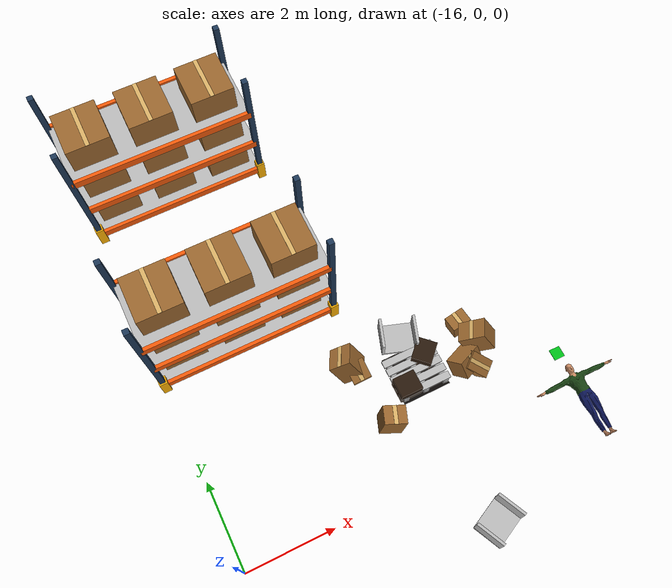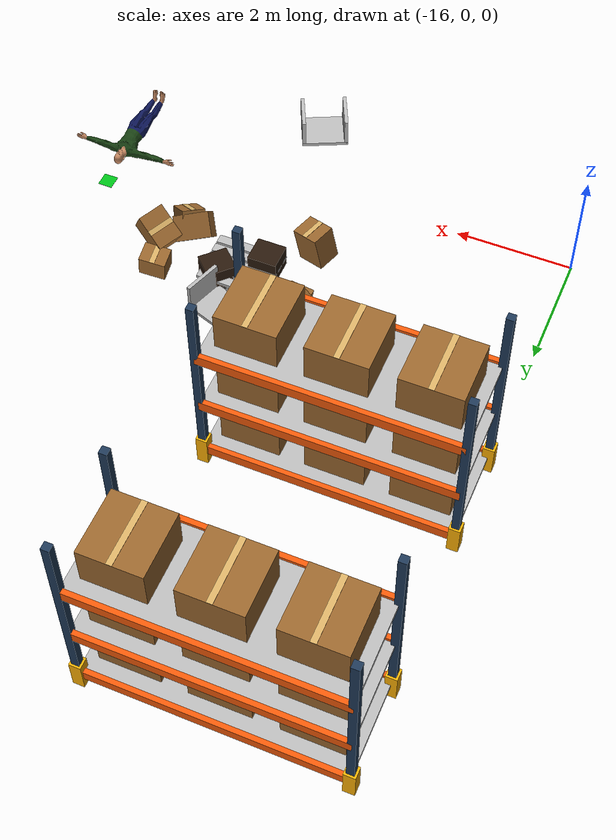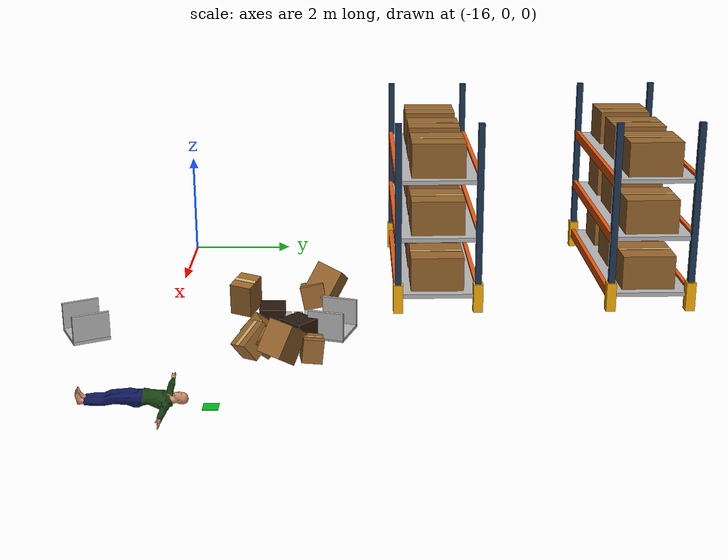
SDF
<sdf version="1.9">
 <world name="factory">
  <model name="rack_-1_1_2">
   <static>true</static>
   <pose>-14 5 0 0 0 0</pose>
   <link name="body">
    <visual name="post0_visual">
     <pose>-2 -0.75 1.8 0 0 0</pose>
     <geometry><box><size>0.12 0.12 3.6</size></box></geometry>
     <material><ambient>.12 .22 .34 1</ambient><diffuse>.12 .22 .34 1</diffuse></material>
    </visual>
    <collision name="post0_collision">
     <pose>-2 -0.75 1.8 0 0 0</pose>
     <geometry><box><size>0.12 0.12 3.6</size></box></geometry>
    </collision>
    <visual name="guard0_visual">
     <pose>-2 -0.75 0.275 0 0 0</pose>
     <geometry><box><size>0.18 0.18 0.55</size></box></geometry>
     <material><ambient>1 .7 .02 1</ambient><diffuse>1 .7 .02 1</diffuse></material>
    </visual>
    <collision name="guard0_collision">
     <pose>-2 -0.75 0.275 0 0 0</pose>
     <geometry><box><size>0.18 0.18 0.55</size></box></geometry>
    </collision>
    <visual name="post1_visual">
     <pose>2 -0.75 1.8 0 0 0</pose>
     <geometry><box><size>0.12 0.12 3.6</size></box></geometry>
     <material><ambient>.12 .22 .34 1</ambient><diffuse>.12 .22 .34 1</diffuse></material>
    </visual>
    <collision name="post1_collision">
     <pose>2 -0.75 1.8 0 0 0</pose>
     <geometry><box><size>0.12 0.12 3.6</size></box></geometry>
    </collision>
    <visual name="guard1_visual">
     <pose>2 -0.75 0.275 0 0 0</pose>
     <geometry><box><size>0.18 0.18 0.55</size></box></geometry>
     <material><ambient>1 .7 .02 1</ambient><diffuse>1 .7 .02 1</diffuse></material>
    </visual>
    <collision name="guard1_collision">
     <pose>2 -0.75 0.275 0 0 0</pose>
     <geometry><box><size>0.18 0.18 0.55</size></box></geometry>
    </collision>
    <visual name="post2_visual">
     <pose>-2 0.75 1.8 0 0 0</pose>
     <geometry><box><size>0.12 0.12 3.6</size></box></geometry>
     <material><ambient>.12 .22 .34 1</ambient><diffuse>.12 .22 .34 1</diffuse></material>
    </visual>
    <collision name="post2_collision">
     <pose>-2 0.75 1.8 0 0 0</pose>
     <geometry><box><size>0.12 0.12 3.6</size></box></geometry>
    </collision>
    <visual name="guard2_visual">
     <pose>-2 0.75 0.275 0 0 0</pose>
     <geometry><box><size>0.18 0.18 0.55</size></box></geometry>
     <material><ambient>1 .7 .02 1</ambient><diffuse>1 .7 .02 1</diffuse></material>
    </visual>
    <collision name="guard2_collision">
     <pose>-2 0.75 0.275 0 0 0</pose>
     <geometry><box><size>0.18 0.18 0.55</size></box></geometry>
    </collision>
    <visual name="post3_visual">
     <pose>2 0.75 1.8 0 0 0</pose>
     <geometry><box><size>0.12 0.12 3.6</size></box></geometry>
     <material><ambient>.12 .22 .34 1</ambient><diffuse>.12 .22 .34 1</diffuse></material>
    </visual>
    <collision name="post3_collision">
     <pose>2 0.75 1.8 0 0 0</pose>
     <geometry><box><size>0.12 0.12 3.6</size></box></geometry>
    </collision>
    <visual name="guard3_visual">
     <pose>2 0.75 0.275 0 0 0</pose>
     <geometry><box><size>0.18 0.18 0.55</size></box></geometry>
     <material><ambient>1 .7 .02 1</ambient><diffuse>1 .7 .02 1</diffuse></material>
    </visual>
    <collision name="guard3_collision">
     <pose>2 0.75 0.275 0 0 0</pose>
     <geometry><box><size>0.18 0.18 0.55</size></box></geometry>
    </collision>
    <visual name="shelf0_visual">
     <pose>0 0 0.3 0 0 0</pose>
     <geometry><mesh><uri>model://factory_scene_assets/meshes/wood_010.dae</uri></mesh></geometry>
    </visual>
    <collision name="shelf0_collision">
     <pose>0 0 0.3 0 0 0</pose>
     <geometry><box><size>4 1.5 0.08</size></box></geometry>
    </collision>
    <visual name="beam0_0_visual">
     <pose>0 -0.77 0.3 0 0 0</pose>
     <geometry><box><size>4 0.08 0.18</size></box></geometry>
     <material><ambient>.95 .35 .035 1</ambient><diffuse>.95 .35 .035 1</diffuse></material>
    </visual>
    <collision name="beam0_0_collision">
     <pose>0 -0.77 0.3 0 0 0</pose>
     <geometry><box><size>4 0.08 0.18</size></box></geometry>
    </collision>
    <visual name="beam0_1_visual">
     <pose>0 0.77 0.3 0 0 0</pose>
     <geometry><box><size>4 0.08 0.18</size></box></geometry>
     <material><ambient>.95 .35 .035 1</ambient><diffuse>.95 .35 .035 1</diffuse></material>
    </visual>
    <collision name="beam0_1_collision">
     <pose>0 0.77 0.3 0 0 0</pose>
     <geometry><box><size>4 0.08 0.18</size></box></geometry>
    </collision>
    <visual name="cargo0_0_visual">
     <pose>-1.35 0 0.665 0 0 0</pose>
     <geometry><box><size>0.95 1 0.65</size></box></geometry>
     <material><ambient>.60 .40 .18 1</ambient><diffuse>.60 .40 .18 1</diffuse></material>
    </visual>
    <collision name="cargo0_0_collision">
     <pose>-1.35 0 0.665 0 0 0</pose>
     <geometry><box><size>0.95 1 0.65</size></box></geometry>
    </collision>
    <visual name="cargo0_0_tape_visual">
     <pose>-1.35 0 0.993 0 0 0</pose>
     <geometry><box><size>0.09 1 0.006</size></box></geometry>
     <material><ambient>.85 .69 .4 1</ambient><diffuse>.85 .69 .4 1</diffuse></material>
    </visual>
    <visual name="cargo0_1_visual">
     <pose>0 0 0.665 0 0 0</pose>
     <geometry><box><size>0.95 1 0.65</size></box></geometry>
     <material><ambient>.60 .40 .18 1</ambient><diffuse>.60 .40 .18 1</diffuse></material>
    </visual>
    <collision name="cargo0_1_collision">
     <pose>0 0 0.665 0 0 0</pose>
     <geometry><box><size>0.95 1 0.65</size></box></geometry>
    </collision>
    <visual name="cargo0_1_tape_visual">
     <pose>0 0 0.993 0 0 0</pose>
     <geometry><box><size>0.09 1 0.006</size></box></geometry>
     <material><ambient>.85 .69 .4 1</ambient><diffuse>.85 .69 .4 1</diffuse></material>
    </visual>
    <visual name="cargo0_2_visual">
     <pose>1.35 0 0.665 0 0 0</pose>
     <geometry><box><size>0.95 1 0.65</size></box></geometry>
     <material><ambient>.60 .40 .18 1</ambient><diffuse>.60 .40 .18 1</diffuse></material>
    </visual>
    <collision name="cargo0_2_collision">
     <pose>1.35 0 0.665 0 0 0</pose>
     <geometry><box><size>0.95 1 0.65</size></box></geometry>
    </collision>
    <visual name="cargo0_2_tape_visual">
     <pose>1.35 0 0.993 0 0 0</pose>
     <geometry><box><size>0.09 1 0.006</size></box></geometry>
     <material><ambient>.85 .69 .4 1</ambient><diffuse>.85 .69 .4 1</diffuse></material>
    </visual>
    <visual name="shelf1_visual">
     <pose>0 0 1.4 0 0 0</pose>
     <geometry><mesh><uri>model://factory_scene_assets/meshes/wood_010.dae</uri></mesh></geometry>
    </visual>
    <collision name="shelf1_collision">
     <pose>0 0 1.4 0 0 0</pose>
     <geometry><box><size>4 1.5 0.08</size></box></geometry>
    </collision>
    <visual name="beam1_0_visual">
     <pose>0 -0.77 1.4 0 0 0</pose>
     <geometry><box><size>4 0.08 0.18</size></box></geometry>
     <material><ambient>.95 .35 .035 1</ambient><diffuse>.95 .35 .035 1</diffuse></material>
    </visual>
    <collision name="beam1_0_collision">
     <pose>0 -0.77 1.4 0 0 0</pose>
     <geometry><box><size>4 0.08 0.18</size></box></geometry>
    </collision>
    <visual name="beam1_1_visual">
     <pose>0 0.77 1.4 0 0 0</pose>
     <geometry><box><size>4 0.08 0.18</size></box></geometry>
     <material><ambient>.95 .35 .035 1</ambient><diffuse>.95 .35 .035 1</diffuse></material>
    </visual>
    <collision name="beam1_1_collision">
     <pose>0 0.77 1.4 0 0 0</pose>
     <geometry><box><size>4 0.08 0.18</size></box></geometry>
    </collision>
    <visual name="cargo1_0_visual">
     <pose>-1.35 0 1.765 0 0 0</pose>
     <geometry><box><size>0.95 1 0.65</size></box></geometry>
     <material><ambient>.60 .40 .18 1</ambient><diffuse>.60 .40 .18 1</diffuse></material>
    </visual>
    <collision name="cargo1_0_collision">
     <pose>-1.35 0 1.765 0 0 0</pose>
     <geometry><box><size>0.95 1 0.65</size></box></geometry>
    </collision>
    <visual name="cargo1_0_tape_visual">
     <pose>-1.35 0 2.093 0 0 0</pose>
     <geometry><box><size>0.09 1 0.006</size></box></geometry>
     <material><ambient>.85 .69 .4 1</ambient><diffuse>.85 .69 .4 1</diffuse></material>
    </visual>
    <visual name="cargo1_1_visual">
     <pose>0 0 1.765 0 0 0</pose>
     <geometry><box><size>0.95 1 0.65</size></box></geometry>
     <material><ambient>.60 .40 .18 1</ambient><diffuse>.60 .40 .18 1</diffuse></material>
    </visual>
    <collision name="cargo1_1_collision">
     <pose>0 0 1.765 0 0 0</pose>
     <geometry><box><size>0.95 1 0.65</size></box></geometry>
    </collision>
    <visual name="cargo1_1_tape_visual">
     <pose>0 0 2.093 0 0 0</pose>
     <geometry><box><size>0.09 1 0.006</size></box></geometry>
     <material><ambient>.85 .69 .4 1</ambient><diffuse>.85 .69 .4 1</diffuse></material>
    </visual>
    <visual name="cargo1_2_visual">
     <pose>1.35 0 1.765 0 0 0</pose>
     <geometry><box><size>0.95 1 0.65</size></box></geometry>
     <material><ambient>.60 .40 .18 1</ambient><diffuse>.60 .40 .18 1</diffuse></material>
    </visual>
    <collision name="cargo1_2_collision">
     <pose>1.35 0 1.765 0 0 0</pose>
     <geometry><box><size>0.95 1 0.65</size></box></geometry>
    </collision>
    <visual name="cargo1_2_tape_visual">
     <pose>1.35 0 2.093 0 0 0</pose>
     <geometry><box><size>0.09 1 0.006</size></box></geometry>
     <material><ambient>.85 .69 .4 1</ambient><diffuse>.85 .69 .4 1</diffuse></material>
    </visual>
    <visual name="shelf2_visual">
     <pose>0 0 2.5 0 0 0</pose>
     <geometry><mesh><uri>model://factory_scene_assets/meshes/wood_010.dae</uri></mesh></geometry>
    </visual>
    <collision name="shelf2_collision">
     <pose>0 0 2.5 0 0 0</pose>
     <geometry><box><size>4 1.5 0.08</size></box></geometry>
    </collision>
    <visual name="beam2_0_visual">
     <pose>0 -0.77 2.5 0 0 0</pose>
     <geometry><box><size>4 0.08 0.18</size></box></geometry>
     <material><ambient>.95 .35 .035 1</ambient><diffuse>.95 .35 .035 1</diffuse></material>
    </visual>
    <collision name="beam2_0_collision">
     <pose>0 -0.77 2.5 0 0 0</pose>
     <geometry><box><size>4 0.08 0.18</size></box></geometry>
    </collision>
    <visual name="beam2_1_visual">
     <pose>0 0.77 2.5 0 0 0</pose>
     <geometry><box><size>4 0.08 0.18</size></box></geometry>
     <material><ambient>.95 .35 .035 1</ambient><diffuse>.95 .35 .035 1</diffuse></material>
    </visual>
    <collision name="beam2_1_collision">
     <pose>0 0.77 2.5 0 0 0</pose>
     <geometry><box><size>4 0.08 0.18</size></box></geometry>
    </collision>
    <visual name="cargo2_0_visual">
     <pose>-1.35 0 2.865 0 0 0</pose>
     <geometry><box><size>0.95 1 0.65</size></box></geometry>
     <material><ambient>.60 .40 .18 1</ambient><diffuse>.60 .40 .18 1</diffuse></material>
    </visual>
    <collision name="cargo2_0_collision">
     <pose>-1.35 0 2.865 0 0 0</pose>
     <geometry><box><size>0.95 1 0.65</size></box></geometry>
    </collision>
    <visual name="cargo2_0_tape_visual">
     <pose>-1.35 0 3.193 0 0 0</pose>
     <geometry><box><size>0.09 1 0.006</size></box></geometry>
     <material><ambient>.85 .69 .4 1</ambient><diffuse>.85 .69 .4 1</diffuse></material>
    </visual>
    <visual name="cargo2_1_visual">
     <pose>0 0 2.865 0 0 0</pose>
     <geometry><box><size>0.95 1 0.65</size></box></geometry>
     <material><ambient>.60 .40 .18 1</ambient><diffuse>.60 .40 .18 1</diffuse></material>
    </visual>
    <collision name="cargo2_1_collision">
     <pose>0 0 2.865 0 0 0</pose>
     <geometry><box><size>0.95 1 0.65</size></box></geometry>
    </collision>
    <visual name="cargo2_1_tape_visual">
     <pose>0 0 3.193 0 0 0</pose>
     <geometry><box><size>0.09 1 0.006</size></box></geometry>
     <material><ambient>.85 .69 .4 1</ambient><diffuse>.85 .69 .4 1</diffuse></material>
    </visual>
    <visual name="cargo2_2_visual">
     <pose>1.35 0 2.865 0 0 0</pose>
     <geometry><box><size>0.95 1 0.65</size></box></geometry>
     <material><ambient>.60 .40 .18 1</ambient><diffuse>.60 .40 .18 1</diffuse></material>
    </visual>
    <collision name="cargo2_2_collision">
     <pose>1.35 0 2.865 0 0 0</pose>
     <geometry><box><size>0.95 1 0.65</size></box></geometry>
    </collision>
    <visual name="cargo2_2_tape_visual">
     <pose>1.35 0 3.193 0 0 0</pose>
     <geometry><box><size>0.09 1 0.006</size></box></geometry>
     <material><ambient>.85 .69 .4 1</ambient><diffuse>.85 .69 .4 1</diffuse></material>
    </visual>
   </link>
  </model>
  <model name="rack_-1_1_3">
   <static>true</static>
   <pose>-14 9 0 0 0 0</pose>
   <link name="body">
    <visual name="post0_visual">
     <pose>-2 -0.75 1.8 0 0 0</pose>
     <geometry><box><size>0.12 0.12 3.6</size></box></geometry>
     <material><ambient>.12 .22 .34 1</ambient><diffuse>.12 .22 .34 1</diffuse></material>
    </visual>
    <collision name="post0_collision">
     <pose>-2 -0.75 1.8 0 0 0</pose>
     <geometry><box><size>0.12 0.12 3.6</size></box></geometry>
    </collision>
    <visual name="guard0_visual">
     <pose>-2 -0.75 0.275 0 0 0</pose>
     <geometry><box><size>0.18 0.18 0.55</size></box></geometry>
     <material><ambient>1 .7 .02 1</ambient><diffuse>1 .7 .02 1</diffuse></material>
    </visual>
    <collision name="guard0_collision">
     <pose>-2 -0.75 0.275 0 0 0</pose>
     <geometry><box><size>0.18 0.18 0.55</size></box></geometry>
    </collision>
    <visual name="post1_visual">
     <pose>2 -0.75 1.8 0 0 0</pose>
     <geometry><box><size>0.12 0.12 3.6</size></box></geometry>
     <material><ambient>.12 .22 .34 1</ambient><diffuse>.12 .22 .34 1</diffuse></material>
    </visual>
    <collision name="post1_collision">
     <pose>2 -0.75 1.8 0 0 0</pose>
     <geometry><box><size>0.12 0.12 3.6</size></box></geometry>
    </collision>
    <visual name="guard1_visual">
     <pose>2 -0.75 0.275 0 0 0</pose>
     <geometry><box><size>0.18 0.18 0.55</size></box></geometry>
     <material><ambient>1 .7 .02 1</ambient><diffuse>1 .7 .02 1</diffuse></material>
    </visual>
    <collision name="guard1_collision">
     <pose>2 -0.75 0.275 0 0 0</pose>
     <geometry><box><size>0.18 0.18 0.55</size></box></geometry>
    </collision>
    <visual name="post2_visual">
     <pose>-2 0.75 1.8 0 0 0</pose>
     <geometry><box><size>0.12 0.12 3.6</size></box></geometry>
     <material><ambient>.12 .22 .34 1</ambient><diffuse>.12 .22 .34 1</diffuse></material>
    </visual>
    <collision name="post2_collision">
     <pose>-2 0.75 1.8 0 0 0</pose>
     <geometry><box><size>0.12 0.12 3.6</size></box></geometry>
    </collision>
    <visual name="guard2_visual">
     <pose>-2 0.75 0.275 0 0 0</pose>
     <geometry><box><size>0.18 0.18 0.55</size></box></geometry>
     <material><ambient>1 .7 .02 1</ambient><diffuse>1 .7 .02 1</diffuse></material>
    </visual>
    <collision name="guard2_collision">
     <pose>-2 0.75 0.275 0 0 0</pose>
     <geometry><box><size>0.18 0.18 0.55</size></box></geometry>
    </collision>
    <visual name="post3_visual">
     <pose>2 0.75 1.8 0 0 0</pose>
     <geometry><box><size>0.12 0.12 3.6</size></box></geometry>
     <material><ambient>.12 .22 .34 1</ambient><diffuse>.12 .22 .34 1</diffuse></material>
    </visual>
    <collision name="post3_collision">
     <pose>2 0.75 1.8 0 0 0</pose>
     <geometry><box><size>0.12 0.12 3.6</size></box></geometry>
    </collision>
    <visual name="guard3_visual">
     <pose>2 0.75 0.275 0 0 0</pose>
     <geometry><box><size>0.18 0.18 0.55</size></box></geometry>
     <material><ambient>1 .7 .02 1</ambient><diffuse>1 .7 .02 1</diffuse></material>
    </visual>
    <collision name="guard3_collision">
     <pose>2 0.75 0.275 0 0 0</pose>
     <geometry><box><size>0.18 0.18 0.55</size></box></geometry>
    </collision>
    <visual name="shelf0_visual">
     <pose>0 0 0.3 0 0 0</pose>
     <geometry><mesh><uri>model://factory_scene_assets/meshes/wood_010.dae</uri></mesh></geometry>
    </visual>
    <collision name="shelf0_collision">
     <pose>0 0 0.3 0 0 0</pose>
     <geometry><box><size>4 1.5 0.08</size></box></geometry>
    </collision>
    <visual name="beam0_0_visual">
     <pose>0 -0.77 0.3 0 0 0</pose>
     <geometry><box><size>4 0.08 0.18</size></box></geometry>
     <material><ambient>.95 .35 .035 1</ambient><diffuse>.95 .35 .035 1</diffuse></material>
    </visual>
    <collision name="beam0_0_collision">
     <pose>0 -0.77 0.3 0 0 0</pose>
     <geometry><box><size>4 0.08 0.18</size></box></geometry>
    </collision>
    <visual name="beam0_1_visual">
     <pose>0 0.77 0.3 0 0 0</pose>
     <geometry><box><size>4 0.08 0.18</size></box></geometry>
     <material><ambient>.95 .35 .035 1</ambient><diffuse>.95 .35 .035 1</diffuse></material>
    </visual>
    <collision name="beam0_1_collision">
     <pose>0 0.77 0.3 0 0 0</pose>
     <geometry><box><size>4 0.08 0.18</size></box></geometry>
    </collision>
    <visual name="cargo0_0_visual">
     <pose>-1.35 0 0.665 0 0 0</pose>
     <geometry><box><size>0.95 1 0.65</size></box></geometry>
     <material><ambient>.60 .40 .18 1</ambient><diffuse>.60 .40 .18 1</diffuse></material>
    </visual>
    <collision name="cargo0_0_collision">
     <pose>-1.35 0 0.665 0 0 0</pose>
     <geometry><box><size>0.95 1 0.65</size></box></geometry>
    </collision>
    <visual name="cargo0_0_tape_visual">
     <pose>-1.35 0 0.993 0 0 0</pose>
     <geometry><box><size>0.09 1 0.006</size></box></geometry>
     <material><ambient>.85 .69 .4 1</ambient><diffuse>.85 .69 .4 1</diffuse></material>
    </visual>
    <visual name="cargo0_1_visual">
     <pose>0 0 0.665 0 0 0</pose>
     <geometry><box><size>0.95 1 0.65</size></box></geometry>
     <material><ambient>.60 .40 .18 1</ambient><diffuse>.60 .40 .18 1</diffuse></material>
    </visual>
    <collision name="cargo0_1_collision">
     <pose>0 0 0.665 0 0 0</pose>
     <geometry><box><size>0.95 1 0.65</size></box></geometry>
    </collision>
    <visual name="cargo0_1_tape_visual">
     <pose>0 0 0.993 0 0 0</pose>
     <geometry><box><size>0.09 1 0.006</size></box></geometry>
     <material><ambient>.85 .69 .4 1</ambient><diffuse>.85 .69 .4 1</diffuse></material>
    </visual>
    <visual name="cargo0_2_visual">
     <pose>1.35 0 0.665 0 0 0</pose>
     <geometry><box><size>0.95 1 0.65</size></box></geometry>
     <material><ambient>.60 .40 .18 1</ambient><diffuse>.60 .40 .18 1</diffuse></material>
    </visual>
    <collision name="cargo0_2_collision">
     <pose>1.35 0 0.665 0 0 0</pose>
     <geometry><box><size>0.95 1 0.65</size></box></geometry>
    </collision>
    <visual name="cargo0_2_tape_visual">
     <pose>1.35 0 0.993 0 0 0</pose>
     <geometry><box><size>0.09 1 0.006</size></box></geometry>
     <material><ambient>.85 .69 .4 1</ambient><diffuse>.85 .69 .4 1</diffuse></material>
    </visual>
    <visual name="shelf1_visual">
     <pose>0 0 1.4 0 0 0</pose>
     <geometry><mesh><uri>model://factory_scene_assets/meshes/wood_010.dae</uri></mesh></geometry>
    </visual>
    <collision name="shelf1_collision">
     <pose>0 0 1.4 0 0 0</pose>
     <geometry><box><size>4 1.5 0.08</size></box></geometry>
    </collision>
    <visual name="beam1_0_visual">
     <pose>0 -0.77 1.4 0 0 0</pose>
     <geometry><box><size>4 0.08 0.18</size></box></geometry>
     <material><ambient>.95 .35 .035 1</ambient><diffuse>.95 .35 .035 1</diffuse></material>
    </visual>
    <collision name="beam1_0_collision">
     <pose>0 -0.77 1.4 0 0 0</pose>
     <geometry><box><size>4 0.08 0.18</size></box></geometry>
    </collision>
    <visual name="beam1_1_visual">
     <pose>0 0.77 1.4 0 0 0</pose>
     <geometry><box><size>4 0.08 0.18</size></box></geometry>
     <material><ambient>.95 .35 .035 1</ambient><diffuse>.95 .35 .035 1</diffuse></material>
    </visual>
    <collision name="beam1_1_collision">
     <pose>0 0.77 1.4 0 0 0</pose>
     <geometry><box><size>4 0.08 0.18</size></box></geometry>
    </collision>
    <visual name="cargo1_0_visual">
     <pose>-1.35 0 1.765 0 0 0</pose>
     <geometry><box><size>0.95 1 0.65</size></box></geometry>
     <material><ambient>.60 .40 .18 1</ambient><diffuse>.60 .40 .18 1</diffuse></material>
    </visual>
    <collision name="cargo1_0_collision">
     <pose>-1.35 0 1.765 0 0 0</pose>
     <geometry><box><size>0.95 1 0.65</size></box></geometry>
    </collision>
    <visual name="cargo1_0_tape_visual">
     <pose>-1.35 0 2.093 0 0 0</pose>
     <geometry><box><size>0.09 1 0.006</size></box></geometry>
     <material><ambient>.85 .69 .4 1</ambient><diffuse>.85 .69 .4 1</diffuse></material>
    </visual>
    <visual name="cargo1_1_visual">
     <pose>0 0 1.765 0 0 0</pose>
     <geometry><box><size>0.95 1 0.65</size></box></geometry>
     <material><ambient>.60 .40 .18 1</ambient><diffuse>.60 .40 .18 1</diffuse></material>
    </visual>
    <collision name="cargo1_1_collision">
     <pose>0 0 1.765 0 0 0</pose>
     <geometry><box><size>0.95 1 0.65</size></box></geometry>
    </collision>
    <visual name="cargo1_1_tape_visual">
     <pose>0 0 2.093 0 0 0</pose>
     <geometry><box><size>0.09 1 0.006</size></box></geometry>
     <material><ambient>.85 .69 .4 1</ambient><diffuse>.85 .69 .4 1</diffuse></material>
    </visual>
    <visual name="cargo1_2_visual">
     <pose>1.35 0 1.765 0 0 0</pose>
     <geometry><box><size>0.95 1 0.65</size></box></geometry>
     <material><ambient>.60 .40 .18 1</ambient><diffuse>.60 .40 .18 1</diffuse></material>
    </visual>
    <collision name="cargo1_2_collision">
     <pose>1.35 0 1.765 0 0 0</pose>
     <geometry><box><size>0.95 1 0.65</size></box></geometry>
    </collision>
    <visual name="cargo1_2_tape_visual">
     <pose>1.35 0 2.093 0 0 0</pose>
     <geometry><box><size>0.09 1 0.006</size></box></geometry>
     <material><ambient>.85 .69 .4 1</ambient><diffuse>.85 .69 .4 1</diffuse></material>
    </visual>
    <visual name="shelf2_visual">
     <pose>0 0 2.5 0 0 0</pose>
     <geometry><mesh><uri>model://factory_scene_assets/meshes/wood_010.dae</uri></mesh></geometry>
    </visual>
    <collision name="shelf2_collision">
     <pose>0 0 2.5 0 0 0</pose>
     <geometry><box><size>4 1.5 0.08</size></box></geometry>
    </collision>
    <visual name="beam2_0_visual">
     <pose>0 -0.77 2.5 0 0 0</pose>
     <geometry><box><size>4 0.08 0.18</size></box></geometry>
     <material><ambient>.95 .35 .035 1</ambient><diffuse>.95 .35 .035 1</diffuse></material>
    </visual>
    <collision name="beam2_0_collision">
     <pose>0 -0.77 2.5 0 0 0</pose>
     <geometry><box><size>4 0.08 0.18</size></box></geometry>
    </collision>
    <visual name="beam2_1_visual">
     <pose>0 0.77 2.5 0 0 0</pose>
     <geometry><box><size>4 0.08 0.18</size></box></geometry>
     <material><ambient>.95 .35 .035 1</ambient><diffuse>.95 .35 .035 1</diffuse></material>
    </visual>
    <collision name="beam2_1_collision">
     <pose>0 0.77 2.5 0 0 0</pose>
     <geometry><box><size>4 0.08 0.18</size></box></geometry>
    </collision>
    <visual name="cargo2_0_visual">
     <pose>-1.35 0 2.865 0 0 0</pose>
     <geometry><box><size>0.95 1 0.65</size></box></geometry>
     <material><ambient>.60 .40 .18 1</ambient><diffuse>.60 .40 .18 1</diffuse></material>
    </visual>
    <collision name="cargo2_0_collision">
     <pose>-1.35 0 2.865 0 0 0</pose>
     <geometry><box><size>0.95 1 0.65</size></box></geometry>
    </collision>
    <visual name="cargo2_0_tape_visual">
     <pose>-1.35 0 3.193 0 0 0</pose>
     <geometry><box><size>0.09 1 0.006</size></box></geometry>
     <material><ambient>.85 .69 .4 1</ambient><diffuse>.85 .69 .4 1</diffuse></material>
    </visual>
    <visual name="cargo2_1_visual">
     <pose>0 0 2.865 0 0 0</pose>
     <geometry><box><size>0.95 1 0.65</size></box></geometry>
     <material><ambient>.60 .40 .18 1</ambient><diffuse>.60 .40 .18 1</diffuse></material>
    </visual>
    <collision name="cargo2_1_collision">
     <pose>0 0 2.865 0 0 0</pose>
     <geometry><box><size>0.95 1 0.65</size></box></geometry>
    </collision>
    <visual name="cargo2_1_tape_visual">
     <pose>0 0 3.193 0 0 0</pose>
     <geometry><box><size>0.09 1 0.006</size></box></geometry>
     <material><ambient>.85 .69 .4 1</ambient><diffuse>.85 .69 .4 1</diffuse></material>
    </visual>
    <visual name="cargo2_2_visual">
     <pose>1.35 0 2.865 0 0 0</pose>
     <geometry><box><size>0.95 1 0.65</size></box></geometry>
     <material><ambient>.60 .40 .18 1</ambient><diffuse>.60 .40 .18 1</diffuse></material>
    </visual>
    <collision name="cargo2_2_collision">
     <pose>1.35 0 2.865 0 0 0</pose>
     <geometry><box><size>0.95 1 0.65</size></box></geometry>
    </collision>
    <visual name="cargo2_2_tape_visual">
     <pose>1.35 0 3.193 0 0 0</pose>
     <geometry><box><size>0.09 1 0.006</size></box></geometry>
     <material><ambient>.85 .69 .4 1</ambient><diffuse>.85 .69 .4 1</diffuse></material>
    </visual>
   </link>
  </model>
  <model name="broken_crate_06">
   <static>true</static>
   <pose>-11 -1.35 0 0 0 0.4461711</pose>
   <link name="body">
    <visual name="base_visual">
     <pose>0 0 0.03 0 0 0</pose>
     <geometry><mesh><uri>model://factory_scene_assets/meshes/wood_013.dae</uri></mesh></geometry>
    </visual>
    <collision name="base_collision">
     <pose>0 0 0.03 0 0 0</pose>
     <geometry><box><size>0.8 0.65 0.06</size></box></geometry>
    </collision>
    <visual name="side0_visual">
     <pose>-0.37 0 0.28 0 0 0</pose>
     <geometry><mesh><uri>model://factory_scene_assets/meshes/wood_014.dae</uri></mesh></geometry>
    </visual>
    <collision name="side0_collision">
     <pose>-0.37 0 0.28 0 0 0</pose>
     <geometry><box><size>0.06 0.65 0.5</size></box></geometry>
    </collision>
    <visual name="side1_visual">
     <pose>0.37 0 0.28 0 0 0</pose>
     <geometry><mesh><uri>model://factory_scene_assets/meshes/wood_014.dae</uri></mesh></geometry>
    </visual>
    <collision name="side1_collision">
     <pose>0.37 0 0.28 0 0 0</pose>
     <geometry><box><size>0.06 0.65 0.5</size></box></geometry>
    </collision>
   </link>
  </model>
  <model name="fallen_pallet_7">
   <static>true</static>
   <pose>-11 2.2 0 0 0 0</pose>
   <link name="body">
    <visual name="runner0_visual">
     <pose>-0.48 0 0.065 0 0 0</pose>
     <geometry><mesh><uri>model://factory_scene_assets/meshes/wood_011.dae</uri></mesh></geometry>
    </visual>
    <collision name="runner0_collision">
     <pose>-0.48 0 0.065 0 0 0</pose>
     <geometry><box><size>0.12 1 0.13</size></box></geometry>
    </collision>
    <visual name="runner1_visual">
     <pose>0 0 0.065 0 0 0</pose>
     <geometry><mesh><uri>model://factory_scene_assets/meshes/wood_011.dae</uri></mesh></geometry>
    </visual>
    <collision name="runner1_collision">
     <pose>0 0 0.065 0 0 0</pose>
     <geometry><box><size>0.12 1 0.13</size></box></geometry>
    </collision>
    <visual name="runner2_visual">
     <pose>0.48 0 0.065 0 0 0</pose>
     <geometry><mesh><uri>model://factory_scene_assets/meshes/wood_011.dae</uri></mesh></geometry>
    </visual>
    <collision name="runner2_collision">
     <pose>0.48 0 0.065 0 0 0</pose>
     <geometry><box><size>0.12 1 0.13</size></box></geometry>
    </collision>
    <visual name="plank0_visual">
     <pose>0 -0.4 0.155 0 0 0</pose>
     <geometry><mesh><uri>model://factory_scene_assets/meshes/wood_012.dae</uri></mesh></geometry>
    </visual>
    <collision name="plank0_collision">
     <pose>0 -0.4 0.155 0 0 0</pose>
     <geometry><box><size>1.2 0.16 0.05</size></box></geometry>
    </collision>
    <visual name="plank1_visual">
     <pose>0 -0.2 0.155 0 0 0</pose>
     <geometry><mesh><uri>model://factory_scene_assets/meshes/wood_012.dae</uri></mesh></geometry>
    </visual>
    <collision name="plank1_collision">
     <pose>0 -0.2 0.155 0 0 0</pose>
     <geometry><box><size>1.2 0.16 0.05</size></box></geometry>
    </collision>
    <visual name="plank2_visual">
     <pose>0 0 0.155 0 0 0</pose>
     <geometry><mesh><uri>model://factory_scene_assets/meshes/wood_012.dae</uri></mesh></geometry>
    </visual>
    <collision name="plank2_collision">
     <pose>0 0 0.155 0 0 0</pose>
     <geometry><box><size>1.2 0.16 0.05</size></box></geometry>
    </collision>
    <visual name="plank3_visual">
     <pose>0 0.2 0.155 0 0 0</pose>
     <geometry><mesh><uri>model://factory_scene_assets/meshes/wood_012.dae</uri></mesh></geometry>
    </visual>
    <collision name="plank3_collision">
     <pose>0 0.2 0.155 0 0 0</pose>
     <geometry><box><size>1.2 0.16 0.05</size></box></geometry>
    </collision>
    <visual name="plank4_visual">
     <pose>0 0.4 0.155 0 0 0</pose>
     <geometry><mesh><uri>model://factory_scene_assets/meshes/wood_012.dae</uri></mesh></geometry>
    </visual>
    <collision name="plank4_collision">
     <pose>0 0.4 0.155 0 0 0</pose>
     <geometry><box><size>1.2 0.16 0.05</size></box></geometry>
    </collision>
   </link>
  </model>
  <model name="fallen_box_07_0">
   <static>true</static>
   <pose>-10 1.863417 0 0 0 0</pose>
   <link name="body">
    <visual name="box_visual">
     <pose>0 0 0.3636902 -0.839883 -0.2051697 -2.73725</pose>
     <geometry><box><size>0.6011693 0.422754 0.4234358</size></box></geometry>
     <material><ambient>.60 .40 .18 1</ambient><diffuse>.60 .40 .18 1</diffuse></material>
    </visual>
    <collision name="box_collision">
     <pose>0 0 0.3636902 -0.839883 -0.2051697 -2.73725</pose>
     <geometry><box><size>0.6011693 0.422754 0.4234358</size></box></geometry>
    </collision>
    <visual name="box_tape_visual">
     <pose>0.08974301 -0.1354911 0.5040188 -0.839883 -0.2051697 -2.73725</pose>
     <geometry><box><size>0.09 0.422754 0.006</size></box></geometry>
     <material><ambient>.85 .69 .4 1</ambient><diffuse>.85 .69 .4 1</diffuse></material>
    </visual>
   </link>
  </model>
  <model name="fallen_box_07_1">
   <static>true</static>
   <pose>-12 1.41517 0 0 0 0</pose>
   <link name="body">
    <visual name="box_visual">
     <pose>0 0 0.3690027 -0.07908119 0.1733109 -0.3717976</pose>
     <geometry><box><size>0.4928314 0.4066546 0.6124355</size></box></geometry>
     <material><ambient>.60 .40 .18 1</ambient><diffuse>.60 .40 .18 1</diffuse></material>
    </visual>
    <collision name="box_collision">
     <pose>0 0 0.3690027 -0.07908119 0.1733109 -0.3717976</pose>
     <geometry><box><size>0.4928314 0.4066546 0.6124355</size></box></geometry>
    </collision>
    <visual name="box_tape_visual">
     <pose>0.05839882 0.003447628 0.6726362 -0.07908119 0.1733109 -0.3717976</pose>
     <geometry><box><size>0.09 0.4066546 0.006</size></box></geometry>
     <material><ambient>.85 .69 .4 1</ambient><diffuse>.85 .69 .4 1</diffuse></material>
    </visual>
   </link>
  </model>
  <model name="fallen_box_07_2">
   <static>true</static>
   <pose>-9.84 1.716699 0 0 0 0</pose>
   <link name="body">
    <visual name="box_visual">
     <pose>0 0 0.3489618 0.6026082 -0.1760067 0.7126294</pose>
     <geometry><box><size>0.3975211 0.5467586 0.3738067</size></box></geometry>
     <material><ambient>.60 .40 .18 1</ambient><diffuse>.60 .40 .18 1</diffuse></material>
    </visual>
    <collision name="box_collision">
     <pose>0 0 0.3489618 0.6026082 -0.1760067 0.7126294</pose>
     <geometry><box><size>0.3975211 0.5467586 0.3738067</size></box></geometry>
    </collision>
    <visual name="box_tape_visual">
     <pose>0.04964685 -0.09935374 0.5029985 0.6026082 -0.1760067 0.7126294</pose>
     <geometry><box><size>0.09 0.5467586 0.006</size></box></geometry>
     <material><ambient>.85 .69 .4 1</ambient><diffuse>.85 .69 .4 1</diffuse></material>
    </visual>
   </link>
  </model>
  <model name="fallen_box_07_3">
   <static>true</static>
   <pose>-12.16 2.677011 0 0 0 0</pose>
   <link name="body">
    <visual name="box_visual">
     <pose>0 0 0.2942634 -0.201277 0.1380503 3.130625</pose>
     <geometry><box><size>0.4117545 0.4389661 0.437862</size></box></geometry>
     <material><ambient>.60 .40 .18 1</ambient><diffuse>.60 .40 .18 1</diffuse></material>
    </visual>
    <collision name="box_collision">
     <pose>0 0 0.2942634 -0.201277 0.1380503 3.130625</pose>
     <geometry><box><size>0.4117545 0.4389661 0.437862</size></box></geometry>
    </collision>
    <visual name="box_tape_visual">
     <pose>-0.03040867 -0.04403775 0.5096453 -0.201277 0.1380503 3.130625</pose>
     <geometry><box><size>0.09 0.4389661 0.006</size></box></geometry>
     <material><ambient>.85 .69 .4 1</ambient><diffuse>.85 .69 .4 1</diffuse></material>
    </visual>
   </link>
  </model>
  <model name="fallen_box_07_4">
   <static>true</static>
   <pose>-9.68 2.719455 0 0 0 0</pose>
   <link name="body">
    <visual name="box_visual">
     <pose>0 0 0.2551965 -0.1268383 -0.1052159 0.1131551</pose>
     <geometry><box><size>0.4477698 0.3496786 0.4048513</size></box></geometry>
     <material><ambient>.60 .40 .18 1</ambient><diffuse>.60 .40 .18 1</diffuse></material>
    </visual>
    <collision name="box_collision">
     <pose>0 0 0.2551965 -0.1268383 -0.1052159 0.1131551</pose>
     <geometry><box><size>0.4477698 0.3496786 0.4048513</size></box></geometry>
    </collision>
    <visual name="box_tape_visual">
     <pose>-0.0241982 0.0234034 0.4578451 -0.1268383 -0.1052159 0.1131551</pose>
     <geometry><box><size>0.09 0.3496786 0.006</size></box></geometry>
     <material><ambient>.85 .69 .4 1</ambient><diffuse>.85 .69 .4 1</diffuse></material>
    </visual>
   </link>
  </model>
  <model name="fallen_box_07_5">
   <static>true</static>
   <pose>-12.32 2.899096 0 0 0 0</pose>
   <link name="body">
    <visual name="box_visual">
     <pose>0 0 0.4586614 0.3657179 0.5534909 2.873808</pose>
     <geometry><box><size>0.5086442 0.5172154 0.594886</size></box></geometry>
     <material><ambient>.60 .40 .18 1</ambient><diffuse>.60 .40 .18 1</diffuse></material>
    </visual>
    <collision name="box_collision">
     <pose>0 0 0.4586614 0.3657179 0.5534909 2.873808</pose>
     <geometry><box><size>0.5086442 0.5172154 0.594886</size></box></geometry>
    </collision>
    <visual name="box_tape_visual">
     <pose>-0.1138006 0.1426393 0.6973441 0.3657179 0.5534909 2.873808</pose>
     <geometry><box><size>0.09 0.5172154 0.006</size></box></geometry>
     <material><ambient>.85 .69 .4 1</ambient><diffuse>.85 .69 .4 1</diffuse></material>
    </visual>
   </link>
  </model>
  <model name="fallen_box_07_6">
   <static>true</static>
   <pose>-9.52 2.229077 0 0 0 0</pose>
   <link name="body">
    <visual name="box_visual">
     <pose>0 0 0.4469151 -0.1855892 -0.5548525 -0.443575</pose>
     <geometry><box><size>0.6009068 0.4479871 0.5829646</size></box></geometry>
     <material><ambient>.60 .40 .18 1</ambient><diffuse>.60 .40 .18 1</diffuse></material>
    </visual>
    <collision name="box_collision">
     <pose>0 0 0.4469151 -0.1855892 -0.5548525 -0.443575</pose>
     <geometry><box><size>0.6009068 0.4479871 0.5829646</size></box></geometry>
    </collision>
    <visual name="box_tape_visual">
     <pose>-0.1143975 0.1145184 0.6929204 -0.1855892 -0.5548525 -0.443575</pose>
     <geometry><box><size>0.09 0.4479871 0.006</size></box></geometry>
     <material><ambient>.85 .69 .4 1</ambient><diffuse>.85 .69 .4 1</diffuse></material>
    </visual>
   </link>
  </model>
  <model name="broken_crate_07">
   <static>true</static>
   <pose>-11 3.05 0 0 0 -0.3272653</pose>
   <link name="body">
    <visual name="base_visual">
     <pose>0 0 0.03 0 0 0</pose>
     <geometry><mesh><uri>model://factory_scene_assets/meshes/wood_013.dae</uri></mesh></geometry>
    </visual>
    <collision name="base_collision">
     <pose>0 0 0.03 0 0 0</pose>
     <geometry><box><size>0.8 0.65 0.06</size></box></geometry>
    </collision>
    <visual name="side0_visual">
     <pose>-0.37 0 0.28 0 0 0</pose>
     <geometry><mesh><uri>model://factory_scene_assets/meshes/wood_014.dae</uri></mesh></geometry>
    </visual>
    <collision name="side0_collision">
     <pose>-0.37 0 0.28 0 0 0</pose>
     <geometry><box><size>0.06 0.65 0.5</size></box></geometry>
    </collision>
    <visual name="side1_visual">
     <pose>0.37 0 0.28 0 0 0</pose>
     <geometry><mesh><uri>model://factory_scene_assets/meshes/wood_014.dae</uri></mesh></geometry>
    </visual>
    <collision name="side1_collision">
     <pose>0.37 0 0.28 0 0 0</pose>
     <geometry><box><size>0.06 0.65 0.5</size></box></geometry>
    </collision>
   </link>
  </model>
  <model name="victim_alive">
   <static>true</static>
   <pose>-8 0 0 0 0 0</pose>
   <link name="body">
    <visual name="person_visual">
     <geometry><mesh><uri>model://factory_scene_assets/meshes/victim_supine.dae</uri></mesh></geometry>
    </visual>
    <visual name="status_marker_visual">
     <pose>0 1.2 0.003 0 0 0</pose>
     <geometry><box><size>0.25 0.25 0.006</size></box></geometry>
     <material><ambient>0 .75 .1 1</ambient><diffuse>0 .75 .1 1</diffuse></material>
    </visual>
    <collision name="torso_collision">
     <pose>0 0 .182 0 0 0</pose>
     <geometry><box><size>.42 1.5 .34</size></box></geometry>
    </collision>
    <collision name="arms_collision">
     <pose>0 .42 .13 0 0 0</pose>
     <geometry><box><size>1.92 .22 .22</size></box></geometry>
    </collision>
    <collision name="head_collision">
     <pose>0 .735 .16 0 0 0</pose>
     <geometry><box><size>.28 .28 .24</size></box></geometry>
    </collision>
   </link>
  </model>
  <model name="fire_03">
   <static>true</static>
   <pose>-11 2.2 0 0 0 0</pose>
   <link name="body">
    <visual name="scorch_visual">
     <pose>0 0 0.003 0 0 0</pose>
     <geometry><box><size>1.1 1.1 0.004</size></box></geometry>
     <material><ambient>.045 .035 .025 1</ambient><diffuse>.045 .035 .025 1</diffuse></material>
    </visual>
    <visual name="charred_crate0_visual">
     <pose>-0.35 -0.25 0.2 0 0 0</pose>
     <geometry><box><size>0.5 0.45 0.4</size></box></geometry>
     <material><ambient>.16 .095 .045 1</ambient><diffuse>.16 .095 .045 1</diffuse></material>
    </visual>
    <collision name="charred_crate0_collision">
     <pose>-0.35 -0.25 0.2 0 0 0</pose>
     <geometry><box><size>0.5 0.45 0.4</size></box></geometry>
    </collision>
    <visual name="charred_crate1_visual">
     <pose>0.32 0.25 0.2 0 0 0.8</pose>
     <geometry><box><size>0.5 0.45 0.4</size></box></geometry>
     <material><ambient>.16 .095 .045 1</ambient><diffuse>.16 .095 .045 1</diffuse></material>
    </visual>
    <collision name="charred_crate1_collision">
     <pose>0.32 0.25 0.2 0 0 0.8</pose>
     <geometry><box><size>0.5 0.45 0.4</size></box></geometry>
    </collision>
    <particle_emitter name="flame" type="box">
     <pose>0 0 .35 0 -1.57079633 0</pose>
     <emitting>true</emitting>
     <size>.12 .65 .65</size>
     <particle_size>.65 1.15 .65</particle_size>
     <lifetime>0.9</lifetime>
     <rate>40</rate>
     <min_velocity>0.35</min_velocity>
     <max_velocity>1.1</max_velocity>
     <scale_rate>0.02</scale_rate>
     <particle_scatter_ratio>.05</particle_scatter_ratio>
     <color_start>1 1 1 1</color_start>
     <color_end>1 .65 .35 0</color_end>
     <material>
      <diffuse>1 1 1 1</diffuse>
      <emissive>1 .55 .1 1</emissive>
      <pbr><metal><albedo_map>model://factory_scene_assets/textures/flame_colored.png</albedo_map></metal></pbr>
     </material>
    </particle_emitter>
    <particle_emitter name="smoke" type="box">
     <pose>0 0 1.25 0 -1.57079633 0</pose>
     <emitting>true</emitting>
     <size>.15 .85 .85</size>
     <particle_size>.8 .8 .8</particle_size>
     <lifetime>3</lifetime>
     <rate>7</rate>
     <min_velocity>0.45</min_velocity>
     <max_velocity>0.8</max_velocity>
     <scale_rate>0.45</scale_rate>
     <particle_scatter_ratio>.05</particle_scatter_ratio>
     <color_start>1 1 1 1</color_start>
     <color_end>.65 .65 .65 0</color_end>
     <material>
      <diffuse>1 1 1 1</diffuse>
      <emissive>0 0 0 1</emissive>
      <pbr><metal><albedo_map>model://factory_scene_assets/textures/smoke_gray.png</albedo_map></metal></pbr>
     </material>
    </particle_emitter>
    <light name="fire_glow" type="point">
     <pose>0 0 .8 0 0 0</pose>
     <diffuse>1 .38 .025 1</diffuse>
     <cast_shadows>false</cast_shadows>
     <attenuation>
      <range>4</range>
      <constant>1</constant>
      <linear>0.5</linear>
      <quadratic>0.2</quadratic>
     </attenuation>
    </light>
   </link>
  </model>
 </world>
</sdf>
